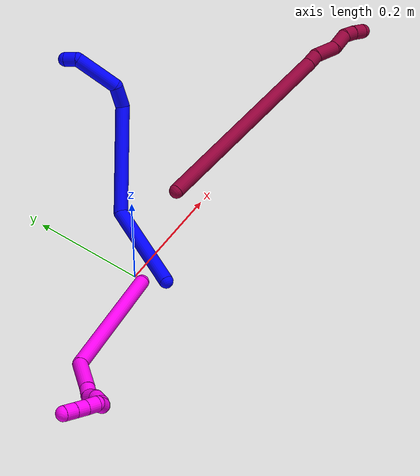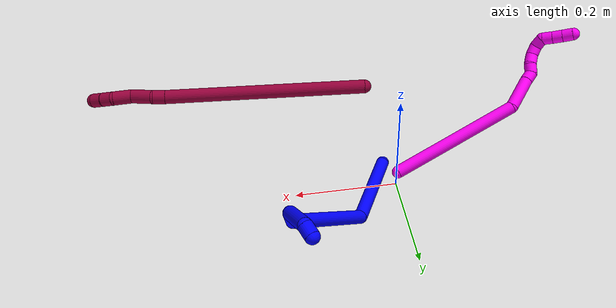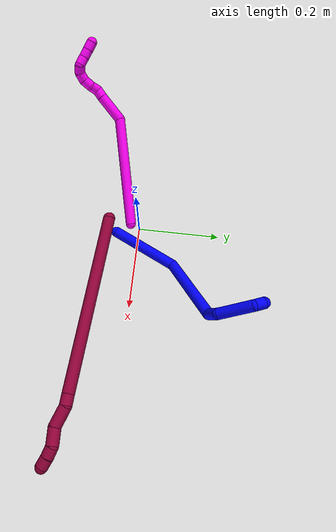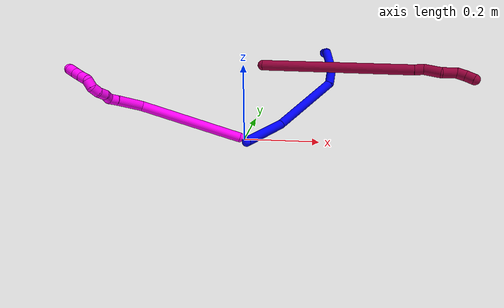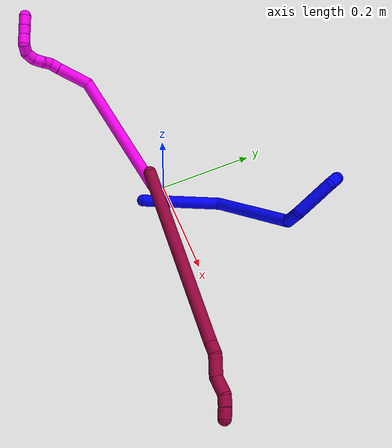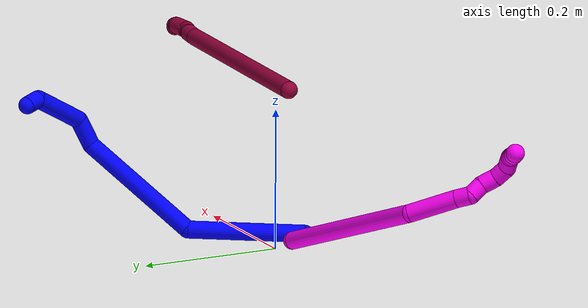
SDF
<sdf version="1.7">
 <world name="default">
  <model name="photoneo_s_sensor">
   <static>1</static>
   <pose>0 0 2 1.57079 1.57079 3.14159</pose>
   <link name="link">
    <inertial><mass>0.1</mass></inertial>
    <sensor name="sensor" type="depth">
     <update_rate>30</update_rate>
     <camera>
      <horizontal_fov>1.22</horizontal_fov>
      <image><width>1920</width><height>1200</height><format>B8G8R8</format></image>
      <clip><near>0.1</near><far>4</far></clip>
      <depth_camera><output>points</output></depth_camera>
     </camera>
     <plugin name="camera_plugin" filename="libgazebo_ros_depth_camera.so">
      <baseline>0.2</baseline>
      <alwaysOn>1</alwaysOn>
      <updateRate>0.0</updateRate>
      <cameraName>camera_ir</cameraName>
      <imageTopicName>/camera/color/image_raw</imageTopicName>
      <cameraInfoTopicName>/camera/color/camera_info</cameraInfoTopicName>
      <depthImageTopicName>/camera/depth/image_raw</depthImageTopicName>
      <depthImageCameraInfoTopicName>/camera/depth/camera_info</depthImageCameraInfoTopicName>
      <pointCloudTopicName>/camera/depth/points</pointCloudTopicName>
      <frameName>fr_optical</frameName>
      <pointCloudCutoff>0.1</pointCloudCutoff>
      <pointCloudCutoffMax>2.0</pointCloudCutoffMax>
      <distortionK1>0</distortionK1>
      <distortionK2>0</distortionK2>
      <distortionK3>0</distortionK3>
      <distortionT1>0</distortionT1>
      <distortionT2>0</distortionT2>
      <CxPrime>0</CxPrime>
      <Cx>0</Cx>
      <Cy>0</Cy>
      <focalLength>0</focalLength>
      <hackBaseline>0</hackBaseline>
     </plugin>
    </sensor>
   </link>
  </model>
  <model name="bin">
   <static>1</static>
   <link name="bottom">
    <collision name="collision-bottom">
     <pose>0 0 -0.01 0 -0 0</pose>
     <geometry><box><size>0.8 0.6 0.02</size></box></geometry>
     <surface>
      <friction><ode><mu>100</mu><mu2>100</mu2></ode></friction>
      <contact><collide_bitmask>65535</collide_bitmask></contact>
     </surface>
    </collision>
   </link>
   <link name="west_wall">
    <collision name="collision-west_wall">
     <pose>-0.41 0 0.1 0 -0 0</pose>
     <geometry><box><size>0.02 0.6 0.2</size></box></geometry>
     <surface>
      <friction><ode><mu>100</mu><mu2>100</mu2></ode></friction>
      <contact><collide_bitmask>65535</collide_bitmask></contact>
     </surface>
    </collision>
   </link>
   <link name="east_wall">
    <collision name="collision-east_wall">
     <pose>0.41 0 0.1 0 -0 0</pose>
     <geometry><box><size>0.02 0.6 0.2</size></box></geometry>
     <surface>
      <friction><ode><mu>100</mu><mu2>100</mu2></ode></friction>
      <contact><collide_bitmask>65535</collide_bitmask></contact>
     </surface>
    </collision>
   </link>
   <link name="south_wall">
    <collision name="collision-south_wall">
     <pose>0 -0.31 0.1 0 -0 0</pose>
     <geometry><box><size>0.8 0.02 0.2</size></box></geometry>
     <surface>
      <friction><ode><mu>100</mu><mu2>100</mu2></ode></friction>
      <contact><collide_bitmask>65535</collide_bitmask></contact>
     </surface>
    </collision>
   </link>
   <link name="north_wall">
    <collision name="collision-north_wall">
     <pose>0 0.31 0.1 0 -0 0</pose>
     <geometry><box><size>0.8 0.02 0.2</size></box></geometry>
     <surface>
      <friction><ode><mu>100</mu><mu2>100</mu2></ode></friction>
      <contact><collide_bitmask>65535</collide_bitmask></contact>
     </surface>
    </collision>
   </link>
  </model>
  <model name="1">
   <static>0</static>
   <link name="1">
    <collision name="collision-cylinder-e_1_1_4">
     <pose>-0.024571 0.014627 0.077378 -0.186833 -0.302445 0.028552</pose>
     <geometry><cylinder><radius>0.0125</radius><length>0.164985</length></cylinder></geometry>
     <surface>
      <friction><ode><mu>1.16</mu><mu2>1.16</mu2><slip1>0</slip1><slip2>0</slip2></ode></friction>
      <contact><ode><kp>1e+06</kp><kd>1</kd><max_vel>0</max_vel><min_depth>0.001</min_depth></ode></contact>
     </surface>
    </collision>
    <visual name="visual-cylinder-e_1_1_4">
     <pose>-0.024571 0.014627 0.077378 -0.186833 -0.302445 0.028552</pose>
     <geometry><cylinder><radius>0.0125</radius><length>0.164985</length></cylinder></geometry>
     <material><ambient>0 0 1 1</ambient></material>
    </visual>
    <collision name="collision-cylinder-e_2_4_5">
     <pose>-0.010215 0.04276 0.239758 -0.157559 0.424744 -0.034041</pose>
     <geometry><cylinder><radius>0.0125</radius><length>0.188925</length></cylinder></geometry>
     <surface>
      <friction><ode><mu>1.16</mu><mu2>1.16</mu2><slip1>0</slip1><slip2>0</slip2></ode></friction>
      <contact><ode><kp>1e+06</kp><kd>1</kd><max_vel>0</max_vel><min_depth>0.001</min_depth></ode></contact>
     </surface>
    </collision>
    <visual name="visual-cylinder-e_2_4_5">
     <pose>-0.010215 0.04276 0.239758 -0.157559 0.424744 -0.034041</pose>
     <geometry><cylinder><radius>0.0125</radius><length>0.188925</length></cylinder></geometry>
     <material><ambient>0 0 1 1</ambient></material>
    </visual>
    <collision name="collision-cylinder-e_3_5_6">
     <pose>0.038167 0.045637 0.339754 0.616637 0.475181 0.153942</pose>
     <geometry><cylinder><radius>0.0125</radius><length>0.041334</length></cylinder></geometry>
     <surface>
      <friction><ode><mu>1.16</mu><mu2>1.16</mu2><slip1>0</slip1><slip2>0</slip2></ode></friction>
      <contact><ode><kp>1e+06</kp><kd>1</kd><max_vel>0</max_vel><min_depth>0.001</min_depth></ode></contact>
     </surface>
    </collision>
    <visual name="visual-cylinder-e_3_5_6">
     <pose>0.038167 0.045637 0.339754 0.616637 0.475181 0.153942</pose>
     <geometry><cylinder><radius>0.0125</radius><length>0.041334</length></cylinder></geometry>
     <material><ambient>0 0 1 1</ambient></material>
    </visual>
    <collision name="collision-cylinder-e_4_6_7">
     <pose>0.038801 0.010636 0.386656 0.652299 -0.21625 -0.073395</pose>
     <geometry><cylinder><radius>0.0125</radius><length>0.082222</length></cylinder></geometry>
     <surface>
      <friction><ode><mu>1.16</mu><mu2>1.16</mu2><slip1>0</slip1><slip2>0</slip2></ode></friction>
      <contact><ode><kp>1e+06</kp><kd>1</kd><max_vel>0</max_vel><min_depth>0.001</min_depth></ode></contact>
     </surface>
    </collision>
    <visual name="visual-cylinder-e_4_6_7">
     <pose>0.038801 0.010636 0.386656 0.652299 -0.21625 -0.073395</pose>
     <geometry><cylinder><radius>0.0125</radius><length>0.082222</length></cylinder></geometry>
     <material><ambient>0 0 1 1</ambient></material>
    </visual>
    <collision name="collision-cylinder-e_5_7_2">
     <pose>0.020613 -0.017142 0.423822 0.5748 -0.981467 -0.313291</pose>
     <geometry><cylinder><radius>0.0125</radius><length>0.022535</length></cylinder></geometry>
     <surface>
      <friction><ode><mu>1.16</mu><mu2>1.16</mu2><slip1>0</slip1><slip2>0</slip2></ode></friction>
      <contact><ode><kp>1e+06</kp><kd>1</kd><max_vel>0</max_vel><min_depth>0.001</min_depth></ode></contact>
     </surface>
    </collision>
    <visual name="visual-cylinder-e_5_7_2">
     <pose>0.020613 -0.017142 0.423822 0.5748 -0.981467 -0.313291</pose>
     <geometry><cylinder><radius>0.0125</radius><length>0.022535</length></cylinder></geometry>
     <material><ambient>0 0 1 1</ambient></material>
    </visual>
    <collision name="collision-sphere-2">
     <pose>0.011247 -0.020547 0.429078 0 -0 0</pose>
     <geometry><sphere><radius>0.0125</radius></sphere></geometry>
     <surface>
      <friction><ode><mu>1.16</mu><mu2>1.16</mu2><slip1>0</slip1><slip2>0</slip2></ode></friction>
      <contact><ode><kp>1e+06</kp><kd>1</kd><max_vel>0</max_vel><min_depth>0.001</min_depth></ode></contact>
     </surface>
    </collision>
    <visual name="visual-sphere-2">
     <pose>0.011247 -0.020547 0.429078 0 -0 0</pose>
     <geometry><sphere><radius>0.0125</radius></sphere></geometry>
     <material><ambient>0 0 1 1</ambient></material>
    </visual>
    <collision name="collision-sphere-7">
     <pose>0.02998 -0.013738 0.418565 0 -0 0</pose>
     <geometry><sphere><radius>0.0125</radius></sphere></geometry>
     <surface>
      <friction><ode><mu>1.16</mu><mu2>1.16</mu2><slip1>0</slip1><slip2>0</slip2></ode></friction>
      <contact><ode><kp>1e+06</kp><kd>1</kd><max_vel>0</max_vel><min_depth>0.001</min_depth></ode></contact>
     </surface>
    </collision>
    <visual name="visual-sphere-7">
     <pose>0.02998 -0.013738 0.418565 0 -0 0</pose>
     <geometry><sphere><radius>0.0125</radius></sphere></geometry>
     <material><ambient>0 0 1 1</ambient></material>
    </visual>
    <collision name="collision-sphere-6">
     <pose>0.047622 0.03501 0.354746 0 -0 0</pose>
     <geometry><sphere><radius>0.0125</radius></sphere></geometry>
     <surface>
      <friction><ode><mu>1.16</mu><mu2>1.16</mu2><slip1>0</slip1><slip2>0</slip2></ode></friction>
      <contact><ode><kp>1e+06</kp><kd>1</kd><max_vel>0</max_vel><min_depth>0.001</min_depth></ode></contact>
     </surface>
    </collision>
    <visual name="visual-sphere-6">
     <pose>0.047622 0.03501 0.354746 0 -0 0</pose>
     <geometry><sphere><radius>0.0125</radius></sphere></geometry>
     <material><ambient>0 0 1 1</ambient></material>
    </visual>
    <collision name="collision-sphere-5">
     <pose>0.028712 0.056265 0.324761 0 -0 0</pose>
     <geometry><sphere><radius>0.0125</radius></sphere></geometry>
     <surface>
      <friction><ode><mu>1.16</mu><mu2>1.16</mu2><slip1>0</slip1><slip2>0</slip2></ode></friction>
      <contact><ode><kp>1e+06</kp><kd>1</kd><max_vel>0</max_vel><min_depth>0.001</min_depth></ode></contact>
     </surface>
    </collision>
    <visual name="visual-sphere-5">
     <pose>0.028712 0.056265 0.324761 0 -0 0</pose>
     <geometry><sphere><radius>0.0125</radius></sphere></geometry>
     <material><ambient>0 0 1 1</ambient></material>
    </visual>
    <collision name="collision-sphere-1">
     <geometry><sphere><radius>0.0125</radius></sphere></geometry>
     <surface>
      <friction><ode><mu>1.16</mu><mu2>1.16</mu2><slip1>0</slip1><slip2>0</slip2></ode></friction>
      <contact><ode><kp>1e+06</kp><kd>1</kd><max_vel>0</max_vel><min_depth>0.001</min_depth></ode></contact>
     </surface>
    </collision>
    <visual name="visual-sphere-1">
     <geometry><sphere><radius>0.0125</radius></sphere></geometry>
     <material><ambient>0 0 1 1</ambient></material>
    </visual>
    <collision name="collision-sphere-4">
     <pose>-0.049142 0.029255 0.154756 0 -0 0</pose>
     <geometry><sphere><radius>0.0125</radius></sphere></geometry>
     <surface>
      <friction><ode><mu>1.16</mu><mu2>1.16</mu2><slip1>0</slip1><slip2>0</slip2></ode></friction>
      <contact><ode><kp>1e+06</kp><kd>1</kd><max_vel>0</max_vel><min_depth>0.001</min_depth></ode></contact>
     </surface>
    </collision>
    <visual name="visual-sphere-4">
     <pose>-0.049142 0.029255 0.154756 0 -0 0</pose>
     <geometry><sphere><radius>0.0125</radius></sphere></geometry>
     <material><ambient>0 0 1 1</ambient></material>
    </visual>
    <inertial>
     <pose>-0.001502 0.025732 0.226896 0 -0 0</pose>
     <mass>0.5</mass>
     <inertia>
      <ixx>0.000928</ixx>
      <ixy>0</ixy>
      <ixz>0</ixz>
      <iyy>0.000974</iyy>
      <iyz>0</iyz>
      <izz>-0.000194</izz>
     </inertia>
    </inertial>
   </link>
   <pose>0.016674 -0.054532 0.011492 -1.00902 -0.779038 -0.927954</pose>
  </model>
  <model name="8">
   <static>0</static>
   <link name="8">
    <collision name="collision-cylinder-e_1_1_4">
     <pose>0.020249 0.00186 0.179916 -0.010336 0.112068 -0.00058</pose>
     <geometry><cylinder><radius>0.0125</radius><length>0.362123</length></cylinder></geometry>
     <surface>
      <friction><ode><mu>1.16</mu><mu2>1.16</mu2><slip1>0</slip1><slip2>0</slip2></ode></friction>
      <contact><ode><kp>1e+06</kp><kd>1</kd><max_vel>0</max_vel><min_depth>0.001</min_depth></ode></contact>
     </surface>
    </collision>
    <visual name="visual-cylinder-e_1_1_4">
     <pose>0.020249 0.00186 0.179916 -0.010336 0.112068 -0.00058</pose>
     <geometry><cylinder><radius>0.0125</radius><length>0.362123</length></cylinder></geometry>
     <material><ambient>0.584314 0 0.227451 1</ambient></material>
    </visual>
    <collision name="collision-cylinder-e_2_4_5">
     <pose>0.041253 0.004759 0.370787 -0.094634 0.068556 -0.003248</pose>
     <geometry><cylinder><radius>0.0125</radius><length>0.022061</length></cylinder></geometry>
     <surface>
      <friction><ode><mu>1.16</mu><mu2>1.16</mu2><slip1>0</slip1><slip2>0</slip2></ode></friction>
      <contact><ode><kp>1e+06</kp><kd>1</kd><max_vel>0</max_vel><min_depth>0.001</min_depth></ode></contact>
     </surface>
    </collision>
    <visual name="visual-cylinder-e_2_4_5">
     <pose>0.041253 0.004759 0.370787 -0.094634 0.068556 -0.003248</pose>
     <geometry><cylinder><radius>0.0125</radius><length>0.022061</length></cylinder></geometry>
     <material><ambient>0.584314 0 0.227451 1</ambient></material>
    </visual>
    <collision name="collision-cylinder-e_3_5_6">
     <pose>0.041618 0.000196 0.401322 0.27871 -0.019181 -0.002691</pose>
     <geometry><cylinder><radius>0.0125</radius><length>0.040739</length></cylinder></geometry>
     <surface>
      <friction><ode><mu>1.16</mu><mu2>1.16</mu2><slip1>0</slip1><slip2>0</slip2></ode></friction>
      <contact><ode><kp>1e+06</kp><kd>1</kd><max_vel>0</max_vel><min_depth>0.001</min_depth></ode></contact>
     </surface>
    </collision>
    <visual name="visual-cylinder-e_3_5_6">
     <pose>0.041618 0.000196 0.401322 0.27871 -0.019181 -0.002691</pose>
     <geometry><cylinder><radius>0.0125</radius><length>0.040739</length></cylinder></geometry>
     <material><ambient>0.584314 0 0.227451 1</ambient></material>
    </visual>
    <collision name="collision-cylinder-e_4_6_7">
     <pose>0.04438 -0.003854 0.437232 -0.094813 0.189868 -0.009035</pose>
     <geometry><cylinder><radius>0.0125</radius><length>0.033407</length></cylinder></geometry>
     <surface>
      <friction><ode><mu>1.16</mu><mu2>1.16</mu2><slip1>0</slip1><slip2>0</slip2></ode></friction>
      <contact><ode><kp>1e+06</kp><kd>1</kd><max_vel>0</max_vel><min_depth>0.001</min_depth></ode></contact>
     </surface>
    </collision>
    <visual name="visual-cylinder-e_4_6_7">
     <pose>0.04438 -0.003854 0.437232 -0.094813 0.189868 -0.009035</pose>
     <geometry><cylinder><radius>0.0125</radius><length>0.033407</length></cylinder></geometry>
     <material><ambient>0.584314 0 0.227451 1</ambient></material>
    </visual>
    <collision name="collision-cylinder-e_5_7_8">
     <pose>0.048589 -0.005919 0.463311 0.355386 0.101302 0.018208</pose>
     <geometry><cylinder><radius>0.0125</radius><length>0.020906</length></cylinder></geometry>
     <surface>
      <friction><ode><mu>1.16</mu><mu2>1.16</mu2><slip1>0</slip1><slip2>0</slip2></ode></friction>
      <contact><ode><kp>1e+06</kp><kd>1</kd><max_vel>0</max_vel><min_depth>0.001</min_depth></ode></contact>
     </surface>
    </collision>
    <visual name="visual-cylinder-e_5_7_8">
     <pose>0.048589 -0.005919 0.463311 0.355386 0.101302 0.018208</pose>
     <geometry><cylinder><radius>0.0125</radius><length>0.020906</length></cylinder></geometry>
     <material><ambient>0.584314 0 0.227451 1</ambient></material>
    </visual>
    <collision name="collision-cylinder-e_6_8_2">
     <pose>0.050348 -0.014274 0.482273 0.474841 0.067651 0.016376</pose>
     <geometry><cylinder><radius>0.0125</radius><length>0.020765</length></cylinder></geometry>
     <surface>
      <friction><ode><mu>1.16</mu><mu2>1.16</mu2><slip1>0</slip1><slip2>0</slip2></ode></friction>
      <contact><ode><kp>1e+06</kp><kd>1</kd><max_vel>0</max_vel><min_depth>0.001</min_depth></ode></contact>
     </surface>
    </collision>
    <visual name="visual-cylinder-e_6_8_2">
     <pose>0.050348 -0.014274 0.482273 0.474841 0.067651 0.016376</pose>
     <geometry><cylinder><radius>0.0125</radius><length>0.020765</length></cylinder></geometry>
     <material><ambient>0.584314 0 0.227451 1</ambient></material>
    </visual>
    <collision name="collision-sphere-2">
     <pose>0.05105 -0.01901 0.491486 0 -0 0</pose>
     <geometry><sphere><radius>0.0125</radius></sphere></geometry>
     <surface>
      <friction><ode><mu>1.16</mu><mu2>1.16</mu2><slip1>0</slip1><slip2>0</slip2></ode></friction>
      <contact><ode><kp>1e+06</kp><kd>1</kd><max_vel>0</max_vel><min_depth>0.001</min_depth></ode></contact>
     </surface>
    </collision>
    <visual name="visual-sphere-2">
     <pose>0.05105 -0.01901 0.491486 0 -0 0</pose>
     <geometry><sphere><radius>0.0125</radius></sphere></geometry>
     <material><ambient>0.584314 0 0.227451 1</ambient></material>
    </visual>
    <collision name="collision-sphere-4">
     <pose>0.040497 0.003719 0.359832 0 -0 0</pose>
     <geometry><sphere><radius>0.0125</radius></sphere></geometry>
     <surface>
      <friction><ode><mu>1.16</mu><mu2>1.16</mu2><slip1>0</slip1><slip2>0</slip2></ode></friction>
      <contact><ode><kp>1e+06</kp><kd>1</kd><max_vel>0</max_vel><min_depth>0.001</min_depth></ode></contact>
     </surface>
    </collision>
    <visual name="visual-sphere-4">
     <pose>0.040497 0.003719 0.359832 0 -0 0</pose>
     <geometry><sphere><radius>0.0125</radius></sphere></geometry>
     <material><ambient>0.584314 0 0.227451 1</ambient></material>
    </visual>
    <collision name="collision-sphere-1">
     <geometry><sphere><radius>0.0125</radius></sphere></geometry>
     <surface>
      <friction><ode><mu>1.16</mu><mu2>1.16</mu2><slip1>0</slip1><slip2>0</slip2></ode></friction>
      <contact><ode><kp>1e+06</kp><kd>1</kd><max_vel>0</max_vel><min_depth>0.001</min_depth></ode></contact>
     </surface>
    </collision>
    <visual name="visual-sphere-1">
     <geometry><sphere><radius>0.0125</radius></sphere></geometry>
     <material><ambient>0.584314 0 0.227451 1</ambient></material>
    </visual>
    <collision name="collision-sphere-8">
     <pose>0.049646 -0.009538 0.47306 0 -0 0</pose>
     <geometry><sphere><radius>0.0125</radius></sphere></geometry>
     <surface>
      <friction><ode><mu>1.16</mu><mu2>1.16</mu2><slip1>0</slip1><slip2>0</slip2></ode></friction>
      <contact><ode><kp>1e+06</kp><kd>1</kd><max_vel>0</max_vel><min_depth>0.001</min_depth></ode></contact>
     </surface>
    </collision>
    <visual name="visual-sphere-8">
     <pose>0.049646 -0.009538 0.47306 0 -0 0</pose>
     <geometry><sphere><radius>0.0125</radius></sphere></geometry>
     <material><ambient>0.584314 0 0.227451 1</ambient></material>
    </visual>
    <collision name="collision-sphere-5">
     <pose>0.042009 0.005799 0.381742 0 -0 0</pose>
     <geometry><sphere><radius>0.0125</radius></sphere></geometry>
     <surface>
      <friction><ode><mu>1.16</mu><mu2>1.16</mu2><slip1>0</slip1><slip2>0</slip2></ode></friction>
      <contact><ode><kp>1e+06</kp><kd>1</kd><max_vel>0</max_vel><min_depth>0.001</min_depth></ode></contact>
     </surface>
    </collision>
    <visual name="visual-sphere-5">
     <pose>0.042009 0.005799 0.381742 0 -0 0</pose>
     <geometry><sphere><radius>0.0125</radius></sphere></geometry>
     <material><ambient>0.584314 0 0.227451 1</ambient></material>
    </visual>
    <collision name="collision-sphere-6">
     <pose>0.041227 -0.005407 0.420902 0 -0 0</pose>
     <geometry><sphere><radius>0.0125</radius></sphere></geometry>
     <surface>
      <friction><ode><mu>1.16</mu><mu2>1.16</mu2><slip1>0</slip1><slip2>0</slip2></ode></friction>
      <contact><ode><kp>1e+06</kp><kd>1</kd><max_vel>0</max_vel><min_depth>0.001</min_depth></ode></contact>
     </surface>
    </collision>
    <visual name="visual-sphere-6">
     <pose>0.041227 -0.005407 0.420902 0 -0 0</pose>
     <geometry><sphere><radius>0.0125</radius></sphere></geometry>
     <material><ambient>0.584314 0 0.227451 1</ambient></material>
    </visual>
    <collision name="collision-sphere-7">
     <pose>0.047532 -0.002301 0.453562 0 -0 0</pose>
     <geometry><sphere><radius>0.0125</radius></sphere></geometry>
     <surface>
      <friction><ode><mu>1.16</mu><mu2>1.16</mu2><slip1>0</slip1><slip2>0</slip2></ode></friction>
      <contact><ode><kp>1e+06</kp><kd>1</kd><max_vel>0</max_vel><min_depth>0.001</min_depth></ode></contact>
     </surface>
    </collision>
    <visual name="visual-sphere-7">
     <pose>0.047532 -0.002301 0.453562 0 -0 0</pose>
     <geometry><sphere><radius>0.0125</radius></sphere></geometry>
     <material><ambient>0.584314 0 0.227451 1</ambient></material>
    </visual>
    <inertial>
     <pose>0.026964 0.000475 0.247975 0 -0 0</pose>
     <mass>0.5</mass>
     <inertia>
      <ixx>0.003965</ixx>
      <ixy>0</ixy>
      <ixz>0</ixz>
      <iyy>0.003983</iyy>
      <iyz>0</iyz>
      <izz>-0.000445</izz>
     </inertia>
    </inertial>
   </link>
   <pose>0.057981 -0.049555 0.211031 1.46565 0.770986 1.3402</pose>
  </model>
  <model name="10">
   <static>0</static>
   <link name="10">
    <collision name="collision-cylinder-e_1_1_4">
     <pose>0.002057 -0.014753 0.131521 0.111708 0.015541 0.000869</pose>
     <geometry><cylinder><radius>0.0125</radius><length>0.264723</length></cylinder></geometry>
     <surface>
      <friction><ode><mu>1.16</mu><mu2>1.16</mu2><slip1>0</slip1><slip2>0</slip2></ode></friction>
      <contact><ode><kp>1e+06</kp><kd>1</kd><max_vel>0</max_vel><min_depth>0.001</min_depth></ode></contact>
     </surface>
    </collision>
    <visual name="visual-cylinder-e_1_1_4">
     <pose>0.002057 -0.014753 0.131521 0.111708 0.015541 0.000869</pose>
     <geometry><cylinder><radius>0.0125</radius><length>0.264723</length></cylinder></geometry>
     <material><ambient>1 0 0.964706 1</ambient></material>
    </visual>
    <collision name="collision-cylinder-e_2_4_5">
     <pose>-0.000696 -0.014548 0.29418 -0.447851 -0.138334 0.031553</pose>
     <geometry><cylinder><radius>0.0125</radius><length>0.069757</length></cylinder></geometry>
     <surface>
      <friction><ode><mu>1.16</mu><mu2>1.16</mu2><slip1>0</slip1><slip2>0</slip2></ode></friction>
      <contact><ode><kp>1e+06</kp><kd>1</kd><max_vel>0</max_vel><min_depth>0.001</min_depth></ode></contact>
     </surface>
    </collision>
    <visual name="visual-cylinder-e_2_4_5">
     <pose>-0.000696 -0.014548 0.29418 -0.447851 -0.138334 0.031553</pose>
     <geometry><cylinder><radius>0.0125</radius><length>0.069757</length></cylinder></geometry>
     <material><ambient>1 0 0.964706 1</ambient></material>
    </visual>
    <collision name="collision-cylinder-e_3_5_6">
     <pose>-0.00619 0.004387 0.335113 -0.385573 -0.064715 0.012637</pose>
     <geometry><cylinder><radius>0.0125</radius><length>0.021186</length></cylinder></geometry>
     <surface>
      <friction><ode><mu>1.16</mu><mu2>1.16</mu2><slip1>0</slip1><slip2>0</slip2></ode></friction>
      <contact><ode><kp>1e+06</kp><kd>1</kd><max_vel>0</max_vel><min_depth>0.001</min_depth></ode></contact>
     </surface>
    </collision>
    <visual name="visual-cylinder-e_3_5_6">
     <pose>-0.00619 0.004387 0.335113 -0.385573 -0.064715 0.012637</pose>
     <geometry><cylinder><radius>0.0125</radius><length>0.021186</length></cylinder></geometry>
     <material><ambient>1 0 0.964706 1</ambient></material>
    </visual>
    <collision name="collision-cylinder-e_4_6_7">
     <pose>-0.012994 0.014294 0.350203 -0.842022 -0.655944 0.302402</pose>
     <geometry><cylinder><radius>0.0125</radius><length>0.020066</length></cylinder></geometry>
     <surface>
      <friction><ode><mu>1.16</mu><mu2>1.16</mu2><slip1>0</slip1><slip2>0</slip2></ode></friction>
      <contact><ode><kp>1e+06</kp><kd>1</kd><max_vel>0</max_vel><min_depth>0.001</min_depth></ode></contact>
     </surface>
    </collision>
    <visual name="visual-cylinder-e_4_6_7">
     <pose>-0.012994 0.014294 0.350203 -0.842022 -0.655944 0.302402</pose>
     <geometry><cylinder><radius>0.0125</radius><length>0.020066</length></cylinder></geometry>
     <material><ambient>1 0 0.964706 1</ambient></material>
    </visual>
    <collision name="collision-cylinder-e_5_7_8">
     <pose>-0.022655 0.026356 0.363543 -0.651112 -0.336817 0.11466</pose>
     <geometry><cylinder><radius>0.0125</radius><length>0.021433</length></cylinder></geometry>
     <surface>
      <friction><ode><mu>1.16</mu><mu2>1.16</mu2><slip1>0</slip1><slip2>0</slip2></ode></friction>
      <contact><ode><kp>1e+06</kp><kd>1</kd><max_vel>0</max_vel><min_depth>0.001</min_depth></ode></contact>
     </surface>
    </collision>
    <visual name="visual-cylinder-e_5_7_8">
     <pose>-0.022655 0.026356 0.363543 -0.651112 -0.336817 0.11466</pose>
     <geometry><cylinder><radius>0.0125</radius><length>0.021433</length></cylinder></geometry>
     <material><ambient>1 0 0.964706 1</ambient></material>
    </visual>
    <collision name="collision-cylinder-e_6_8_9">
     <pose>-0.031098 0.034826 0.380186 -0.265745 -0.502835 0.068635</pose>
     <geometry><cylinder><radius>0.0125</radius><length>0.02034</length></cylinder></geometry>
     <surface>
      <friction><ode><mu>1.16</mu><mu2>1.16</mu2><slip1>0</slip1><slip2>0</slip2></ode></friction>
      <contact><ode><kp>1e+06</kp><kd>1</kd><max_vel>0</max_vel><min_depth>0.001</min_depth></ode></contact>
     </surface>
    </collision>
    <visual name="visual-cylinder-e_6_8_9">
     <pose>-0.031098 0.034826 0.380186 -0.265745 -0.502835 0.068635</pose>
     <geometry><cylinder><radius>0.0125</radius><length>0.02034</length></cylinder></geometry>
     <material><ambient>1 0 0.964706 1</ambient></material>
    </visual>
    <collision name="collision-cylinder-e_7_9_10">
     <pose>-0.042157 0.033823 0.396319 0.417656 -0.641639 -0.140608</pose>
     <geometry><cylinder><radius>0.0125</radius><length>0.020579</length></cylinder></geometry>
     <surface>
      <friction><ode><mu>1.16</mu><mu2>1.16</mu2><slip1>0</slip1><slip2>0</slip2></ode></friction>
      <contact><ode><kp>1e+06</kp><kd>1</kd><max_vel>0</max_vel><min_depth>0.001</min_depth></ode></contact>
     </surface>
    </collision>
    <visual name="visual-cylinder-e_7_9_10">
     <pose>-0.042157 0.033823 0.396319 0.417656 -0.641639 -0.140608</pose>
     <geometry><cylinder><radius>0.0125</radius><length>0.020579</length></cylinder></geometry>
     <material><ambient>1 0 0.964706 1</ambient></material>
    </visual>
    <collision name="collision-cylinder-e_8_10_11">
     <pose>-0.047452 0.023865 0.411736 0.698119 0.083731 0.030491</pose>
     <geometry><cylinder><radius>0.0125</radius><length>0.020651</length></cylinder></geometry>
     <surface>
      <friction><ode><mu>1.16</mu><mu2>1.16</mu2><slip1>0</slip1><slip2>0</slip2></ode></friction>
      <contact><ode><kp>1e+06</kp><kd>1</kd><max_vel>0</max_vel><min_depth>0.001</min_depth></ode></contact>
     </surface>
    </collision>
    <visual name="visual-cylinder-e_8_10_11">
     <pose>-0.047452 0.023865 0.411736 0.698119 0.083731 0.030491</pose>
     <geometry><cylinder><radius>0.0125</radius><length>0.020651</length></cylinder></geometry>
     <material><ambient>1 0 0.964706 1</ambient></material>
    </visual>
    <collision name="collision-cylinder-e_9_11_12">
     <pose>-0.04622 0.010668 0.427292 0.709065 0.03645 0.013494</pose>
     <geometry><cylinder><radius>0.0125</radius><length>0.020236</length></cylinder></geometry>
     <surface>
      <friction><ode><mu>1.16</mu><mu2>1.16</mu2><slip1>0</slip1><slip2>0</slip2></ode></friction>
      <contact><ode><kp>1e+06</kp><kd>1</kd><max_vel>0</max_vel><min_depth>0.001</min_depth></ode></contact>
     </surface>
    </collision>
    <visual name="visual-cylinder-e_9_11_12">
     <pose>-0.04622 0.010668 0.427292 0.709065 0.03645 0.013494</pose>
     <geometry><cylinder><radius>0.0125</radius><length>0.020236</length></cylinder></geometry>
     <material><ambient>1 0 0.964706 1</ambient></material>
    </visual>
    <collision name="collision-cylinder-e_10_12_2">
     <pose>-0.045691 -0.002674 0.443019 0.698175 0.015275 0.00556</pose>
     <geometry><cylinder><radius>0.0125</radius><length>0.021029</length></cylinder></geometry>
     <surface>
      <friction><ode><mu>1.16</mu><mu2>1.16</mu2><slip1>0</slip1><slip2>0</slip2></ode></friction>
      <contact><ode><kp>1e+06</kp><kd>1</kd><max_vel>0</max_vel><min_depth>0.001</min_depth></ode></contact>
     </surface>
    </collision>
    <visual name="visual-cylinder-e_10_12_2">
     <pose>-0.045691 -0.002674 0.443019 0.698175 0.015275 0.00556</pose>
     <geometry><cylinder><radius>0.0125</radius><length>0.021029</length></cylinder></geometry>
     <material><ambient>1 0 0.964706 1</ambient></material>
    </visual>
    <collision name="collision-sphere-2">
     <pose>-0.04553 -0.009432 0.451073 0 -0 0</pose>
     <geometry><sphere><radius>0.0125</radius></sphere></geometry>
     <surface>
      <friction><ode><mu>1.16</mu><mu2>1.16</mu2><slip1>0</slip1><slip2>0</slip2></ode></friction>
      <contact><ode><kp>1e+06</kp><kd>1</kd><max_vel>0</max_vel><min_depth>0.001</min_depth></ode></contact>
     </surface>
    </collision>
    <visual name="visual-sphere-2">
     <pose>-0.04553 -0.009432 0.451073 0 -0 0</pose>
     <geometry><sphere><radius>0.0125</radius></sphere></geometry>
     <material><ambient>1 0 0.964706 1</ambient></material>
    </visual>
    <collision name="collision-sphere-12">
     <pose>-0.045851 0.004084 0.434966 0 -0 0</pose>
     <geometry><sphere><radius>0.0125</radius></sphere></geometry>
     <surface>
      <friction><ode><mu>1.16</mu><mu2>1.16</mu2><slip1>0</slip1><slip2>0</slip2></ode></friction>
      <contact><ode><kp>1e+06</kp><kd>1</kd><max_vel>0</max_vel><min_depth>0.001</min_depth></ode></contact>
     </surface>
    </collision>
    <visual name="visual-sphere-12">
     <pose>-0.045851 0.004084 0.434966 0 -0 0</pose>
     <geometry><sphere><radius>0.0125</radius></sphere></geometry>
     <material><ambient>1 0 0.964706 1</ambient></material>
    </visual>
    <collision name="collision-sphere-11">
     <pose>-0.046589 0.017252 0.419618 0 -0 0</pose>
     <geometry><sphere><radius>0.0125</radius></sphere></geometry>
     <surface>
      <friction><ode><mu>1.16</mu><mu2>1.16</mu2><slip1>0</slip1><slip2>0</slip2></ode></friction>
      <contact><ode><kp>1e+06</kp><kd>1</kd><max_vel>0</max_vel><min_depth>0.001</min_depth></ode></contact>
     </surface>
    </collision>
    <visual name="visual-sphere-11">
     <pose>-0.046589 0.017252 0.419618 0 -0 0</pose>
     <geometry><sphere><radius>0.0125</radius></sphere></geometry>
     <material><ambient>1 0 0.964706 1</ambient></material>
    </visual>
    <collision name="collision-sphere-10">
     <pose>-0.048316 0.030479 0.403854 0 -0 0</pose>
     <geometry><sphere><radius>0.0125</radius></sphere></geometry>
     <surface>
      <friction><ode><mu>1.16</mu><mu2>1.16</mu2><slip1>0</slip1><slip2>0</slip2></ode></friction>
      <contact><ode><kp>1e+06</kp><kd>1</kd><max_vel>0</max_vel><min_depth>0.001</min_depth></ode></contact>
     </surface>
    </collision>
    <visual name="visual-sphere-10">
     <pose>-0.048316 0.030479 0.403854 0 -0 0</pose>
     <geometry><sphere><radius>0.0125</radius></sphere></geometry>
     <material><ambient>1 0 0.964706 1</ambient></material>
    </visual>
    <collision name="collision-sphere-9">
     <pose>-0.035999 0.037166 0.388784 0 -0 0</pose>
     <geometry><sphere><radius>0.0125</radius></sphere></geometry>
     <surface>
      <friction><ode><mu>1.16</mu><mu2>1.16</mu2><slip1>0</slip1><slip2>0</slip2></ode></friction>
      <contact><ode><kp>1e+06</kp><kd>1</kd><max_vel>0</max_vel><min_depth>0.001</min_depth></ode></contact>
     </surface>
    </collision>
    <visual name="visual-sphere-9">
     <pose>-0.035999 0.037166 0.388784 0 -0 0</pose>
     <geometry><sphere><radius>0.0125</radius></sphere></geometry>
     <material><ambient>1 0 0.964706 1</ambient></material>
    </visual>
    <collision name="collision-sphere-4">
     <pose>0.004114 -0.029507 0.263042 0 -0 0</pose>
     <geometry><sphere><radius>0.0125</radius></sphere></geometry>
     <surface>
      <friction><ode><mu>1.16</mu><mu2>1.16</mu2><slip1>0</slip1><slip2>0</slip2></ode></friction>
      <contact><ode><kp>1e+06</kp><kd>1</kd><max_vel>0</max_vel><min_depth>0.001</min_depth></ode></contact>
     </surface>
    </collision>
    <visual name="visual-sphere-4">
     <pose>0.004114 -0.029507 0.263042 0 -0 0</pose>
     <geometry><sphere><radius>0.0125</radius></sphere></geometry>
     <material><ambient>1 0 0.964706 1</ambient></material>
    </visual>
    <collision name="collision-sphere-1">
     <geometry><sphere><radius>0.0125</radius></sphere></geometry>
     <surface>
      <friction><ode><mu>1.16</mu><mu2>1.16</mu2><slip1>0</slip1><slip2>0</slip2></ode></friction>
      <contact><ode><kp>1e+06</kp><kd>1</kd><max_vel>0</max_vel><min_depth>0.001</min_depth></ode></contact>
     </surface>
    </collision>
    <visual name="visual-sphere-1">
     <geometry><sphere><radius>0.0125</radius></sphere></geometry>
     <material><ambient>1 0 0.964706 1</ambient></material>
    </visual>
    <collision name="collision-sphere-8">
     <pose>-0.026197 0.032486 0.371588 0 -0 0</pose>
     <geometry><sphere><radius>0.0125</radius></sphere></geometry>
     <surface>
      <friction><ode><mu>1.16</mu><mu2>1.16</mu2><slip1>0</slip1><slip2>0</slip2></ode></friction>
      <contact><ode><kp>1e+06</kp><kd>1</kd><max_vel>0</max_vel><min_depth>0.001</min_depth></ode></contact>
     </surface>
    </collision>
    <visual name="visual-sphere-8">
     <pose>-0.026197 0.032486 0.371588 0 -0 0</pose>
     <geometry><sphere><radius>0.0125</radius></sphere></geometry>
     <material><ambient>1 0 0.964706 1</ambient></material>
    </visual>
    <collision name="collision-sphere-5">
     <pose>-0.005505 0.000412 0.325318 0 -0 0</pose>
     <geometry><sphere><radius>0.0125</radius></sphere></geometry>
     <surface>
      <friction><ode><mu>1.16</mu><mu2>1.16</mu2><slip1>0</slip1><slip2>0</slip2></ode></friction>
      <contact><ode><kp>1e+06</kp><kd>1</kd><max_vel>0</max_vel><min_depth>0.001</min_depth></ode></contact>
     </surface>
    </collision>
    <visual name="visual-sphere-5">
     <pose>-0.005505 0.000412 0.325318 0 -0 0</pose>
     <geometry><sphere><radius>0.0125</radius></sphere></geometry>
     <material><ambient>1 0 0.964706 1</ambient></material>
    </visual>
    <collision name="collision-sphere-6">
     <pose>-0.006875 0.008363 0.344908 0 -0 0</pose>
     <geometry><sphere><radius>0.0125</radius></sphere></geometry>
     <surface>
      <friction><ode><mu>1.16</mu><mu2>1.16</mu2><slip1>0</slip1><slip2>0</slip2></ode></friction>
      <contact><ode><kp>1e+06</kp><kd>1</kd><max_vel>0</max_vel><min_depth>0.001</min_depth></ode></contact>
     </surface>
    </collision>
    <visual name="visual-sphere-6">
     <pose>-0.006875 0.008363 0.344908 0 -0 0</pose>
     <geometry><sphere><radius>0.0125</radius></sphere></geometry>
     <material><ambient>1 0 0.964706 1</ambient></material>
    </visual>
    <collision name="collision-sphere-7">
     <pose>-0.019114 0.020225 0.355498 0 -0 0</pose>
     <geometry><sphere><radius>0.0125</radius></sphere></geometry>
     <surface>
      <friction><ode><mu>1.16</mu><mu2>1.16</mu2><slip1>0</slip1><slip2>0</slip2></ode></friction>
      <contact><ode><kp>1e+06</kp><kd>1</kd><max_vel>0</max_vel><min_depth>0.001</min_depth></ode></contact>
     </surface>
    </collision>
    <visual name="visual-sphere-7">
     <pose>-0.019114 0.020225 0.355498 0 -0 0</pose>
     <geometry><sphere><radius>0.0125</radius></sphere></geometry>
     <material><ambient>1 0 0.964706 1</ambient></material>
    </visual>
    <inertial>
     <pose>-0.009515 -0.003838 0.239222 0 -0 0</pose>
     <mass>0.5</mass>
     <inertia>
      <ixx>0.001598</ixx>
      <ixy>0</ixy>
      <ixz>0</ixz>
      <iyy>0.001587</iyy>
      <iyz>0</iyz>
      <izz>0.000179</izz>
     </inertia>
    </inertial>
   </link>
   <pose>-0.008732 -0.021562 0.011739 -0.456903 1.18057 2.9964</pose>
  </model>
 </world>
</sdf>
